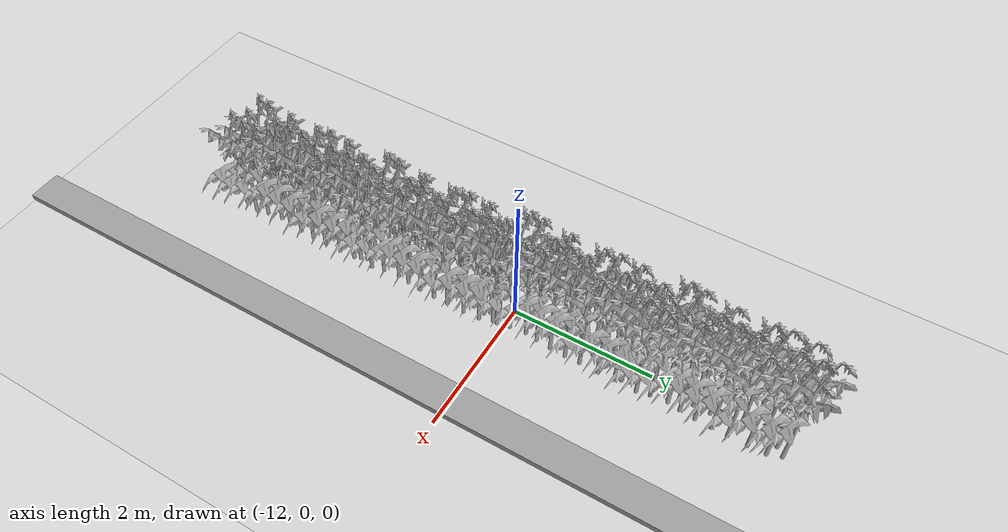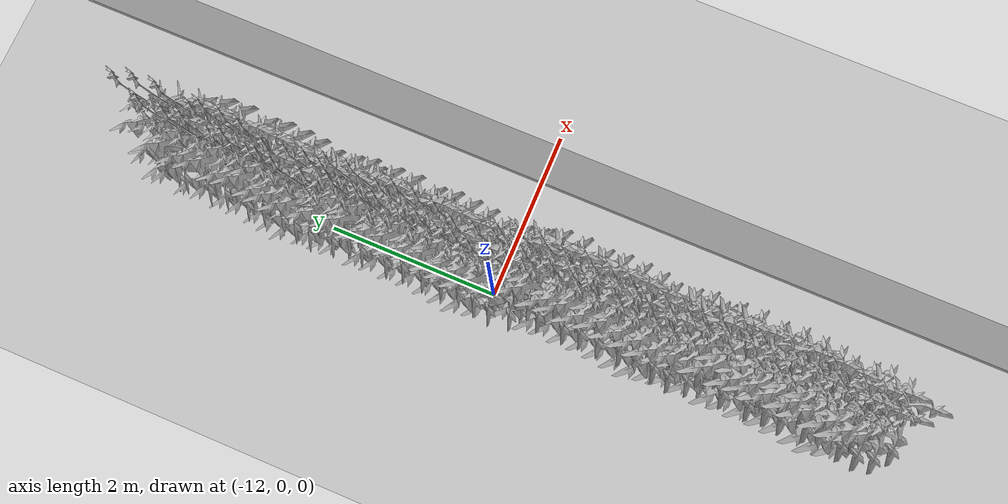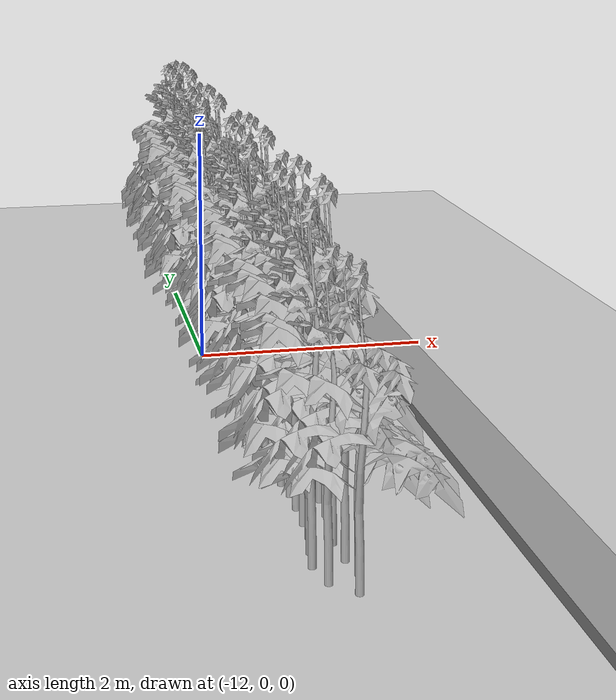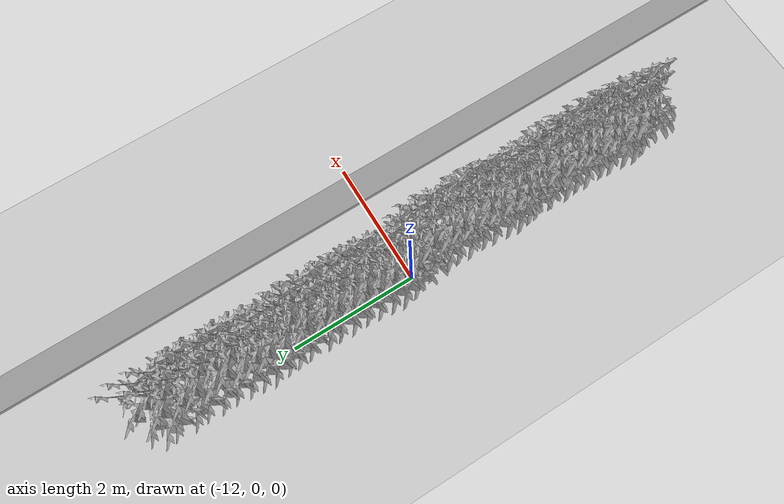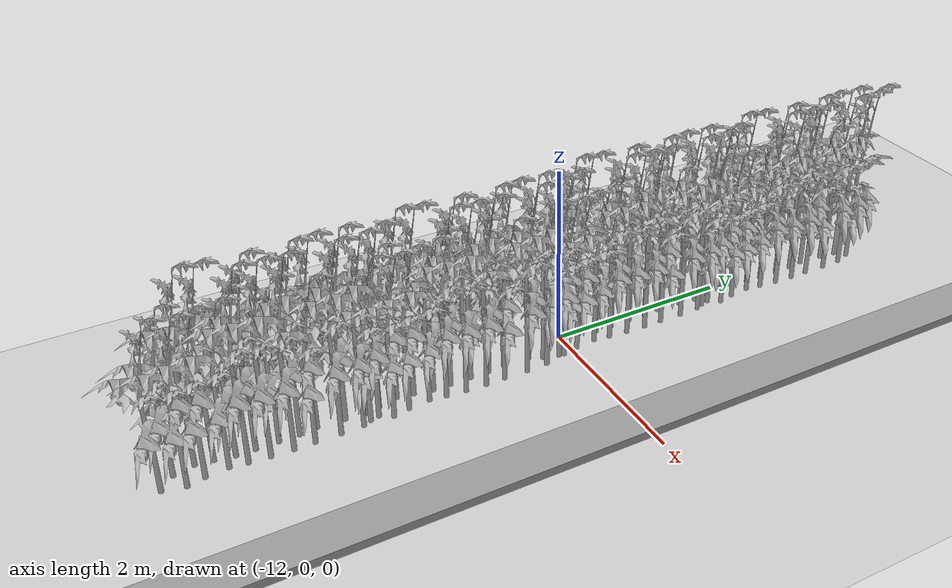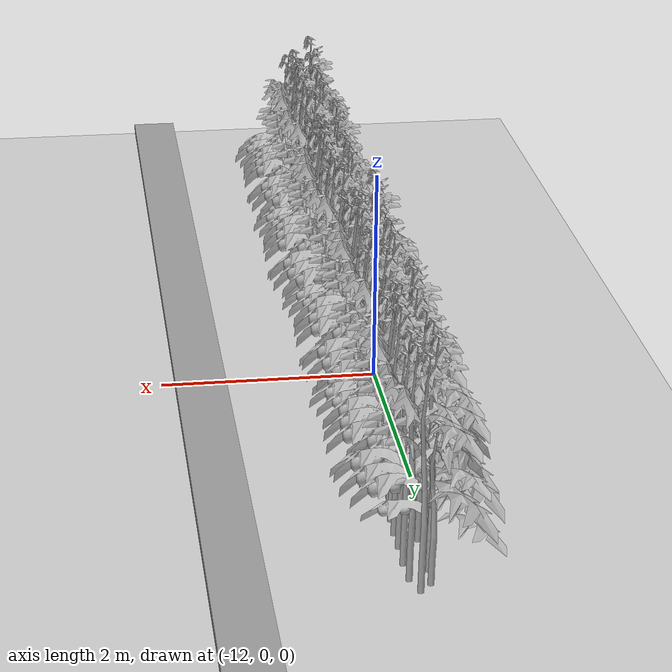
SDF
<sdf version="1.6">
 <world name="default">
  <model name="ground_plane">
   <static>1</static>
   <link name="link">
    <collision name="collision">
     <geometry><plane><normal>0 0 1</normal><size>100 100</size></plane></geometry>
     <surface>
      <contact><collide_bitmask>65535</collide_bitmask></contact>
      <friction><ode><mu>100</mu><mu2>50</mu2></ode></friction>
     </surface>
    </collision>
    <visual name="visual">
     <cast_shadows>0</cast_shadows>
     <geometry><plane><normal>0 0 1</normal><size>100 100</size></plane></geometry>
     <material>
      <script><uri>file://media/materials/scripts/gazebo.material</uri><name>Gazebo/Grey</name></script>
     </material>
    </visual>
   </link>
  </model>
  <model name="Box_24x15W_clone_3">
   <link name="Wall">
    <pose>0 0 0.1985 0 -0 0</pose>
    <inertial>
     <mass>5</mass>
     <inertia><ixx>0.1022</ixx><iyy>0.2197</iyy><izz>0.1905</izz><ixy>0</ixy><ixz>0</ixz><iyz>0</iyz></inertia>
    </inertial>
    <collision name="Wall_Collision">
     <geometry><box><size>0.470639 27.6098 0.091294</size></box></geometry>
    </collision>
    <visual name="Wall_Visual">
     <geometry><box><size>0.470639 27.6098 0.091294</size></box></geometry>
     <material>
      <script><uri>file://media/materials/scripts/gazebo.material</uri><name>Gazebo/Grey</name></script>
      <ambient>1 1 1 1</ambient>
     </material>
    </visual>
   </link>
   <static>1</static>
   <pose>-10.356 -0.233565 -0.139926 0 -0 0</pose>
  </model>
  <model name="MIddle_Plant_3_9">
   <model name="MIddle_Plant_1">
    <model name="tomato_plant_big">
     <static>1</static>
     <link name="link">
      <collision name="collision">
       <pose>0 0 0 1.5708 -0 0</pose>
       <geometry><mesh><scale>0.5 0.6 0.5</scale><uri>model://stick/meshes/stick.dae</uri></mesh></geometry>
      </collision>
      <visual name="visual">
       <geometry>
        <mesh><scale>5e-06 5e-06 7e-06</scale><uri>model://tomato_plant_big/meshes/tomato-plant.dae</uri></mesh>
       </geometry>
      </visual>
     </link>
     <pose>-0.144318 -0.693607 -0 0 -0 0</pose>
    </model>
    <model name="tomato_plant_big_0">
     <static>1</static>
     <link name="link">
      <collision name="collision">
       <pose>0 0 0 1.5708 -0 0</pose>
       <geometry><mesh><scale>0.5 0.6 0.5</scale><uri>model://stick/meshes/stick.dae</uri></mesh></geometry>
      </collision>
      <visual name="visual">
       <geometry>
        <mesh><scale>5e-06 5e-06 7e-06</scale><uri>model://tomato_plant_big/meshes/tomato-plant.dae</uri></mesh>
       </geometry>
      </visual>
     </link>
     <pose>-0.11784 -0.519827 0 0 -0 0</pose>
    </model>
    <model name="tomato_plant_big_1">
     <static>1</static>
     <link name="link">
      <collision name="collision">
       <pose>0 0 0 1.5708 -0 0</pose>
       <geometry><mesh><scale>0.5 0.6 0.5</scale><uri>model://stick/meshes/stick.dae</uri></mesh></geometry>
      </collision>
      <visual name="visual">
       <geometry>
        <mesh><scale>5e-06 5e-06 7e-06</scale><uri>model://tomato_plant_big/meshes/tomato-plant.dae</uri></mesh>
       </geometry>
      </visual>
     </link>
     <pose>0.073755 -0.247584 0 0 -0 0</pose>
    </model>
    <model name="tomato_plant_big_10">
     <static>1</static>
     <link name="link">
      <collision name="collision">
       <pose>0 0 0 1.5708 -0 0</pose>
       <geometry><mesh><scale>0.5 0.6 0.5</scale><uri>model://stick/meshes/stick.dae</uri></mesh></geometry>
      </collision>
      <visual name="visual">
       <geometry>
        <mesh><scale>5e-06 5e-06 7e-06</scale><uri>model://tomato_plant_big/meshes/tomato-plant.dae</uri></mesh>
       </geometry>
      </visual>
     </link>
     <pose>0.037052 1.07094 0 0 -0 0</pose>
    </model>
    <model name="tomato_plant_big_2">
     <static>1</static>
     <link name="link">
      <collision name="collision">
       <pose>0 0 0 1.5708 -0 0</pose>
       <geometry><mesh><scale>0.5 0.6 0.5</scale><uri>model://stick/meshes/stick.dae</uri></mesh></geometry>
      </collision>
      <visual name="visual">
       <geometry>
        <mesh><scale>5e-06 5e-06 7e-06</scale><uri>model://tomato_plant_big/meshes/tomato-plant.dae</uri></mesh>
       </geometry>
      </visual>
     </link>
     <pose>-0.076926 -0.131165 0 0 -0 0</pose>
    </model>
    <model name="tomato_plant_big_3">
     <static>1</static>
     <link name="link">
      <collision name="collision">
       <pose>0 0 0 1.5708 -0 0</pose>
       <geometry><mesh><scale>0.5 0.6 0.5</scale><uri>model://stick/meshes/stick.dae</uri></mesh></geometry>
      </collision>
      <visual name="visual">
       <geometry>
        <mesh><scale>5e-06 5e-06 7e-06</scale><uri>model://tomato_plant_big/meshes/tomato-plant.dae</uri></mesh>
       </geometry>
      </visual>
     </link>
     <pose>0.093714 -0.038386 0 0 -0 0</pose>
    </model>
    <model name="tomato_plant_big_4">
     <static>1</static>
     <link name="link">
      <collision name="collision">
       <pose>0 0 0 1.5708 -0 0</pose>
       <geometry><mesh><scale>0.5 0.6 0.5</scale><uri>model://stick/meshes/stick.dae</uri></mesh></geometry>
      </collision>
      <visual name="visual">
       <geometry>
        <mesh><scale>5e-06 5e-06 7e-06</scale><uri>model://tomato_plant_big/meshes/tomato-plant.dae</uri></mesh>
       </geometry>
      </visual>
     </link>
     <pose>0.103117 0.184356 0 0 -0 0</pose>
    </model>
    <model name="tomato_plant_big_5">
     <static>1</static>
     <link name="link">
      <collision name="collision">
       <pose>0 0 0 1.5708 -0 0</pose>
       <geometry><mesh><scale>0.5 0.6 0.5</scale><uri>model://stick/meshes/stick.dae</uri></mesh></geometry>
      </collision>
      <visual name="visual">
       <geometry>
        <mesh><scale>5e-06 5e-06 7e-06</scale><uri>model://tomato_plant_big/meshes/tomato-plant.dae</uri></mesh>
       </geometry>
      </visual>
     </link>
     <pose>-0.074883 0.301479 0 0 -0 0</pose>
    </model>
    <model name="tomato_plant_big_6">
     <static>1</static>
     <link name="link">
      <collision name="collision">
       <pose>0 0 0 1.5708 -0 0</pose>
       <geometry><mesh><scale>0.5 0.6 0.5</scale><uri>model://stick/meshes/stick.dae</uri></mesh></geometry>
      </collision>
      <visual name="visual">
       <geometry>
        <mesh><scale>5e-06 5e-06 7e-06</scale><uri>model://tomato_plant_big/meshes/tomato-plant.dae</uri></mesh>
       </geometry>
      </visual>
     </link>
     <pose>-0.096921 0.484007 0 0 -0 0</pose>
    </model>
    <model name="tomato_plant_big_7">
     <static>1</static>
     <link name="link">
      <collision name="collision">
       <pose>0 0 0 1.5708 -0 0</pose>
       <geometry><mesh><scale>0.5 0.6 0.5</scale><uri>model://stick/meshes/stick.dae</uri></mesh></geometry>
      </collision>
      <visual name="visual">
       <geometry>
        <mesh><scale>5e-06 5e-06 7e-06</scale><uri>model://tomato_plant_big/meshes/tomato-plant.dae</uri></mesh>
       </geometry>
      </visual>
     </link>
     <pose>0.107491 0.653976 0 0 -0 0</pose>
    </model>
    <model name="tomato_plant_big_8">
     <static>1</static>
     <link name="link">
      <collision name="collision">
       <pose>0 0 0 1.5708 -0 0</pose>
       <geometry><mesh><scale>0.5 0.6 0.5</scale><uri>model://stick/meshes/stick.dae</uri></mesh></geometry>
      </collision>
      <visual name="visual">
       <geometry>
        <mesh><scale>5e-06 5e-06 7e-06</scale><uri>model://tomato_plant_big/meshes/tomato-plant.dae</uri></mesh>
       </geometry>
      </visual>
     </link>
     <pose>-0.07985 0.768549 0 0 -0 0</pose>
    </model>
    <model name="tomato_plant_big_9">
     <static>1</static>
     <link name="link">
      <collision name="collision">
       <pose>0 0 0 1.5708 -0 0</pose>
       <geometry><mesh><scale>0.5 0.6 0.5</scale><uri>model://stick/meshes/stick.dae</uri></mesh></geometry>
      </collision>
      <visual name="visual">
       <geometry>
        <mesh><scale>5e-06 5e-06 7e-06</scale><uri>model://tomato_plant_big/meshes/tomato-plant.dae</uri></mesh>
       </geometry>
      </visual>
     </link>
     <pose>0.098361 0.890852 0 0 -0 0</pose>
    </model>
    <model name="tomato_plant_medium">
     <static>1</static>
     <link name="link">
      <collision name="collision">
       <pose>0 0 0 1.5708 -0 0</pose>
       <geometry><mesh><scale>0.5 0.5 0.5</scale><uri>model://stick/meshes/stick.dae</uri></mesh></geometry>
      </collision>
      <visual name="visual">
       <geometry>
        <mesh><scale>5e-06 5e-06 6e-06</scale><uri>model://tomato_plant_medium/meshes/tomato-plant.dae</uri></mesh>
       </geometry>
      </visual>
     </link>
     <pose>0.056913 -1.05328 0 0 -0 0</pose>
    </model>
    <model name="tomato_plant_medium_0">
     <static>1</static>
     <link name="link">
      <collision name="collision">
       <pose>0 0 0 1.5708 -0 0</pose>
       <geometry><mesh><scale>0.5 0.5 0.5</scale><uri>model://stick/meshes/stick.dae</uri></mesh></geometry>
      </collision>
      <visual name="visual">
       <geometry>
        <mesh><scale>5e-06 5e-06 6e-06</scale><uri>model://tomato_plant_medium/meshes/tomato-plant.dae</uri></mesh>
       </geometry>
      </visual>
     </link>
     <pose>-0.092719 -0.905729 0 0 -0 0</pose>
    </model>
    <model name="tomato_plant_medium_1">
     <static>1</static>
     <link name="link">
      <collision name="collision">
       <pose>0 0 0 1.5708 -0 0</pose>
       <geometry><mesh><scale>0.5 0.5 0.5</scale><uri>model://stick/meshes/stick.dae</uri></mesh></geometry>
      </collision>
      <visual name="visual">
       <geometry>
        <mesh><scale>5e-06 5e-06 6e-06</scale><uri>model://tomato_plant_medium/meshes/tomato-plant.dae</uri></mesh>
       </geometry>
      </visual>
     </link>
     <pose>0.108962 -0.829637 0 0 -0 0</pose>
    </model>
    <model name="tomato_plant_medium_2">
     <static>1</static>
     <link name="link">
      <collision name="collision">
       <pose>0 0 0 1.5708 -0 0</pose>
       <geometry><mesh><scale>0.5 0.5 0.5</scale><uri>model://stick/meshes/stick.dae</uri></mesh></geometry>
      </collision>
      <visual name="visual">
       <geometry>
        <mesh><scale>5e-06 5e-06 6e-06</scale><uri>model://tomato_plant_medium/meshes/tomato-plant.dae</uri></mesh>
       </geometry>
      </visual>
     </link>
     <pose>0.071216 -0.652507 0 0 -0 0</pose>
    </model>
    <model name="tomato_plant_medium_3">
     <static>1</static>
     <link name="link">
      <collision name="collision">
       <pose>0 0 0 1.5708 -0 0</pose>
       <geometry><mesh><scale>0.5 0.5 0.5</scale><uri>model://stick/meshes/stick.dae</uri></mesh></geometry>
      </collision>
      <visual name="visual">
       <geometry>
        <mesh><scale>5e-06 5e-06 6e-06</scale><uri>model://tomato_plant_medium/meshes/tomato-plant.dae</uri></mesh>
       </geometry>
      </visual>
     </link>
     <pose>0.047335 -0.423046 0 0 -0 0</pose>
    </model>
    <model name="tomato_plant_medium_4">
     <static>1</static>
     <link name="link">
      <collision name="collision">
       <pose>0 0 0 1.5708 -0 0</pose>
       <geometry><mesh><scale>0.5 0.5 0.5</scale><uri>model://stick/meshes/stick.dae</uri></mesh></geometry>
      </collision>
      <visual name="visual">
       <geometry>
        <mesh><scale>5e-06 5e-06 6e-06</scale><uri>model://tomato_plant_medium/meshes/tomato-plant.dae</uri></mesh>
       </geometry>
      </visual>
     </link>
     <pose>-0.081012 -0.320324 0 0 -0 0</pose>
    </model>
    <model name="tomato_plant_medium_5">
     <static>1</static>
     <link name="link">
      <collision name="collision">
       <pose>0 0 0 1.5708 -0 0</pose>
       <geometry><mesh><scale>0.5 0.5 0.5</scale><uri>model://stick/meshes/stick.dae</uri></mesh></geometry>
      </collision>
      <visual name="visual">
       <geometry>
        <mesh><scale>5e-06 5e-06 6e-06</scale><uri>model://tomato_plant_medium/meshes/tomato-plant.dae</uri></mesh>
       </geometry>
      </visual>
     </link>
     <pose>-0.07452 0.095988 0 0 -0 0</pose>
    </model>
    <model name="tomato_plant_medium_6">
     <static>1</static>
     <link name="link">
      <collision name="collision">
       <pose>0 0 0 1.5708 -0 0</pose>
       <geometry><mesh><scale>0.5 0.5 0.5</scale><uri>model://stick/meshes/stick.dae</uri></mesh></geometry>
      </collision>
      <visual name="visual">
       <geometry>
        <mesh><scale>5e-06 5e-06 6e-06</scale><uri>model://tomato_plant_medium/meshes/tomato-plant.dae</uri></mesh>
       </geometry>
      </visual>
     </link>
     <pose>0.101424 0.395443 0 0 -0 0</pose>
    </model>
    <model name="tomato_plant_small">
     <static>1</static>
     <link name="link">
      <collision name="collision">
       <pose>0 0 0 1.5708 -0 0</pose>
       <geometry><mesh><scale>0.5 0.45 0.5</scale><uri>model://stick/meshes/stick.dae</uri></mesh></geometry>
      </collision>
      <visual name="visual">
       <geometry>
        <mesh><scale>5e-06 5e-06 5e-06</scale><uri>model://tomato_plant_small/meshes/tomato-plant.dae</uri></mesh>
       </geometry>
      </visual>
     </link>
     <pose>-0.060351 0.969512 0 0 -0 0</pose>
    </model>
    <static>0</static>
    <pose>0.040757 1.77284 0 0 -0 0</pose>
   </model>
   <model name="MIddle_Plant_2">
    <model name="MIddle_Plant_1">
     <model name="tomato_plant_big">
      <static>1</static>
      <link name="link">
       <collision name="collision">
        <pose>0 0 0 1.5708 -0 0</pose>
        <geometry><mesh><scale>0.5 0.6 0.5</scale><uri>model://stick/meshes/stick.dae</uri></mesh></geometry>
       </collision>
       <visual name="visual">
        <geometry>
         <mesh><scale>5e-06 5e-06 7e-06</scale><uri>model://tomato_plant_big/meshes/tomato-plant.dae</uri></mesh>
        </geometry>
       </visual>
      </link>
      <pose>-0.144318 -0.693607 -0 0 -0 0</pose>
     </model>
     <model name="tomato_plant_big_0">
      <static>1</static>
      <link name="link">
       <collision name="collision">
        <pose>0 0 0 1.5708 -0 0</pose>
        <geometry><mesh><scale>0.5 0.6 0.5</scale><uri>model://stick/meshes/stick.dae</uri></mesh></geometry>
       </collision>
       <visual name="visual">
        <geometry>
         <mesh><scale>5e-06 5e-06 7e-06</scale><uri>model://tomato_plant_big/meshes/tomato-plant.dae</uri></mesh>
        </geometry>
       </visual>
      </link>
      <pose>-0.11784 -0.519827 0 0 -0 0</pose>
     </model>
     <model name="tomato_plant_big_1">
      <static>1</static>
      <link name="link">
       <collision name="collision">
        <pose>0 0 0 1.5708 -0 0</pose>
        <geometry><mesh><scale>0.5 0.6 0.5</scale><uri>model://stick/meshes/stick.dae</uri></mesh></geometry>
       </collision>
       <visual name="visual">
        <geometry>
         <mesh><scale>5e-06 5e-06 7e-06</scale><uri>model://tomato_plant_big/meshes/tomato-plant.dae</uri></mesh>
        </geometry>
       </visual>
      </link>
      <pose>0.073755 -0.247584 0 0 -0 0</pose>
     </model>
     <model name="tomato_plant_big_10">
      <static>1</static>
      <link name="link">
       <collision name="collision">
        <pose>0 0 0 1.5708 -0 0</pose>
        <geometry><mesh><scale>0.5 0.6 0.5</scale><uri>model://stick/meshes/stick.dae</uri></mesh></geometry>
       </collision>
       <visual name="visual">
        <geometry>
         <mesh><scale>5e-06 5e-06 7e-06</scale><uri>model://tomato_plant_big/meshes/tomato-plant.dae</uri></mesh>
        </geometry>
       </visual>
      </link>
      <pose>0.037052 1.07094 0 0 -0 0</pose>
     </model>
     <model name="tomato_plant_big_2">
      <static>1</static>
      <link name="link">
       <collision name="collision">
        <pose>0 0 0 1.5708 -0 0</pose>
        <geometry><mesh><scale>0.5 0.6 0.5</scale><uri>model://stick/meshes/stick.dae</uri></mesh></geometry>
       </collision>
       <visual name="visual">
        <geometry>
         <mesh><scale>5e-06 5e-06 7e-06</scale><uri>model://tomato_plant_big/meshes/tomato-plant.dae</uri></mesh>
        </geometry>
       </visual>
      </link>
      <pose>-0.076926 -0.131165 0 0 -0 0</pose>
     </model>
     <model name="tomato_plant_big_3">
      <static>1</static>
      <link name="link">
       <collision name="collision">
        <pose>0 0 0 1.5708 -0 0</pose>
        <geometry><mesh><scale>0.5 0.6 0.5</scale><uri>model://stick/meshes/stick.dae</uri></mesh></geometry>
       </collision>
       <visual name="visual">
        <geometry>
         <mesh><scale>5e-06 5e-06 7e-06</scale><uri>model://tomato_plant_big/meshes/tomato-plant.dae</uri></mesh>
        </geometry>
       </visual>
      </link>
      <pose>0.093714 -0.038386 0 0 -0 0</pose>
     </model>
     <model name="tomato_plant_big_4">
      <static>1</static>
      <link name="link">
       <collision name="collision">
        <pose>0 0 0 1.5708 -0 0</pose>
        <geometry><mesh><scale>0.5 0.6 0.5</scale><uri>model://stick/meshes/stick.dae</uri></mesh></geometry>
       </collision>
       <visual name="visual">
        <geometry>
         <mesh><scale>5e-06 5e-06 7e-06</scale><uri>model://tomato_plant_big/meshes/tomato-plant.dae</uri></mesh>
        </geometry>
       </visual>
      </link>
      <pose>0.103117 0.184356 0 0 -0 0</pose>
     </model>
     <model name="tomato_plant_big_5">
      <static>1</static>
      <link name="link">
       <collision name="collision">
        <pose>0 0 0 1.5708 -0 0</pose>
        <geometry><mesh><scale>0.5 0.6 0.5</scale><uri>model://stick/meshes/stick.dae</uri></mesh></geometry>
       </collision>
       <visual name="visual">
        <geometry>
         <mesh><scale>5e-06 5e-06 7e-06</scale><uri>model://tomato_plant_big/meshes/tomato-plant.dae</uri></mesh>
        </geometry>
       </visual>
      </link>
      <pose>-0.074883 0.301479 0 0 -0 0</pose>
     </model>
     <model name="tomato_plant_big_6">
      <static>1</static>
      <link name="link">
       <collision name="collision">
        <pose>0 0 0 1.5708 -0 0</pose>
        <geometry><mesh><scale>0.5 0.6 0.5</scale><uri>model://stick/meshes/stick.dae</uri></mesh></geometry>
       </collision>
       <visual name="visual">
        <geometry>
         <mesh><scale>5e-06 5e-06 7e-06</scale><uri>model://tomato_plant_big/meshes/tomato-plant.dae</uri></mesh>
        </geometry>
       </visual>
      </link>
      <pose>-0.096921 0.484007 0 0 -0 0</pose>
     </model>
     <model name="tomato_plant_big_7">
      <static>1</static>
      <link name="link">
       <collision name="collision">
        <pose>0 0 0 1.5708 -0 0</pose>
        <geometry><mesh><scale>0.5 0.6 0.5</scale><uri>model://stick/meshes/stick.dae</uri></mesh></geometry>
       </collision>
       <visual name="visual">
        <geometry>
         <mesh><scale>5e-06 5e-06 7e-06</scale><uri>model://tomato_plant_big/meshes/tomato-plant.dae</uri></mesh>
        </geometry>
       </visual>
      </link>
      <pose>0.107491 0.653976 0 0 -0 0</pose>
     </model>
     <model name="tomato_plant_big_8">
      <static>1</static>
      <link name="link">
       <collision name="collision">
        <pose>0 0 0 1.5708 -0 0</pose>
        <geometry><mesh><scale>0.5 0.6 0.5</scale><uri>model://stick/meshes/stick.dae</uri></mesh></geometry>
       </collision>
       <visual name="visual">
        <geometry>
         <mesh><scale>5e-06 5e-06 7e-06</scale><uri>model://tomato_plant_big/meshes/tomato-plant.dae</uri></mesh>
        </geometry>
       </visual>
      </link>
      <pose>-0.07985 0.768549 0 0 -0 0</pose>
     </model>
     <model name="tomato_plant_big_9">
      <static>1</static>
      <link name="link">
       <collision name="collision">
        <pose>0 0 0 1.5708 -0 0</pose>
        <geometry><mesh><scale>0.5 0.6 0.5</scale><uri>model://stick/meshes/stick.dae</uri></mesh></geometry>
       </collision>
       <visual name="visual">
        <geometry>
         <mesh><scale>5e-06 5e-06 7e-06</scale><uri>model://tomato_plant_big/meshes/tomato-plant.dae</uri></mesh>
        </geometry>
       </visual>
      </link>
      <pose>0.098361 0.890852 0 0 -0 0</pose>
     </model>
     <model name="tomato_plant_medium">
      <static>1</static>
      <link name="link">
       <collision name="collision">
        <pose>0 0 0 1.5708 -0 0</pose>
        <geometry><mesh><scale>0.5 0.5 0.5</scale><uri>model://stick/meshes/stick.dae</uri></mesh></geometry>
       </collision>
       <visual name="visual">
        <geometry>
         <mesh><scale>5e-06 5e-06 6e-06</scale><uri>model://tomato_plant_medium/meshes/tomato-plant.dae</uri></mesh>
        </geometry>
       </visual>
      </link>
      <pose>0.056913 -1.05328 0 0 -0 0</pose>
     </model>
     <model name="tomato_plant_medium_0">
      <static>1</static>
      <link name="link">
       <collision name="collision">
        <pose>0 0 0 1.5708 -0 0</pose>
        <geometry><mesh><scale>0.5 0.5 0.5</scale><uri>model://stick/meshes/stick.dae</uri></mesh></geometry>
       </collision>
       <visual name="visual">
        <geometry>
         <mesh><scale>5e-06 5e-06 6e-06</scale><uri>model://tomato_plant_medium/meshes/tomato-plant.dae</uri></mesh>
        </geometry>
       </visual>
      </link>
      <pose>-0.092719 -0.905729 0 0 -0 0</pose>
     </model>
     <model name="tomato_plant_medium_1">
      <static>1</static>
      <link name="link">
       <collision name="collision">
        <pose>0 0 0 1.5708 -0 0</pose>
        <geometry><mesh><scale>0.5 0.5 0.5</scale><uri>model://stick/meshes/stick.dae</uri></mesh></geometry>
       </collision>
       <visual name="visual">
        <geometry>
         <mesh><scale>5e-06 5e-06 6e-06</scale><uri>model://tomato_plant_medium/meshes/tomato-plant.dae</uri></mesh>
        </geometry>
       </visual>
      </link>
      <pose>0.108962 -0.829637 0 0 -0 0</pose>
     </model>
     <model name="tomato_plant_medium_2">
      <static>1</static>
      <link name="link">
       <collision name="collision">
        <pose>0 0 0 1.5708 -0 0</pose>
        <geometry><mesh><scale>0.5 0.5 0.5</scale><uri>model://stick/meshes/stick.dae</uri></mesh></geometry>
       </collision>
       <visual name="visual">
        <geometry>
         <mesh><scale>5e-06 5e-06 6e-06</scale><uri>model://tomato_plant_medium/meshes/tomato-plant.dae</uri></mesh>
        </geometry>
       </visual>
      </link>
      <pose>0.071216 -0.652507 0 0 -0 0</pose>
     </model>
     <model name="tomato_plant_medium_3">
      <static>1</static>
      <link name="link">
       <collision name="collision">
        <pose>0 0 0 1.5708 -0 0</pose>
        <geometry><mesh><scale>0.5 0.5 0.5</scale><uri>model://stick/meshes/stick.dae</uri></mesh></geometry>
       </collision>
       <visual name="visual">
        <geometry>
         <mesh><scale>5e-06 5e-06 6e-06</scale><uri>model://tomato_plant_medium/meshes/tomato-plant.dae</uri></mesh>
        </geometry>
       </visual>
      </link>
      <pose>0.047335 -0.423046 0 0 -0 0</pose>
     </model>
     <model name="tomato_plant_medium_4">
      <static>1</static>
      <link name="link">
       <collision name="collision">
        <pose>0 0 0 1.5708 -0 0</pose>
        <geometry><mesh><scale>0.5 0.5 0.5</scale><uri>model://stick/meshes/stick.dae</uri></mesh></geometry>
       </collision>
       <visual name="visual">
        <geometry>
         <mesh><scale>5e-06 5e-06 6e-06</scale><uri>model://tomato_plant_medium/meshes/tomato-plant.dae</uri></mesh>
        </geometry>
       </visual>
      </link>
      <pose>-0.081012 -0.320324 0 0 -0 0</pose>
     </model>
     <model name="tomato_plant_medium_5">
      <static>1</static>
      <link name="link">
       <collision name="collision">
        <pose>0 0 0 1.5708 -0 0</pose>
        <geometry><mesh><scale>0.5 0.5 0.5</scale><uri>model://stick/meshes/stick.dae</uri></mesh></geometry>
       </collision>
       <visual name="visual">
        <geometry>
         <mesh><scale>5e-06 5e-06 6e-06</scale><uri>model://tomato_plant_medium/meshes/tomato-plant.dae</uri></mesh>
        </geometry>
       </visual>
      </link>
      <pose>-0.07452 0.095988 0 0 -0 0</pose>
     </model>
     <model name="tomato_plant_medium_6">
      <static>1</static>
      <link name="link">
       <collision name="collision">
        <pose>0 0 0 1.5708 -0 0</pose>
        <geometry><mesh><scale>0.5 0.5 0.5</scale><uri>model://stick/meshes/stick.dae</uri></mesh></geometry>
       </collision>
       <visual name="visual">
        <geometry>
         <mesh><scale>5e-06 5e-06 6e-06</scale><uri>model://tomato_plant_medium/meshes/tomato-plant.dae</uri></mesh>
        </geometry>
       </visual>
      </link>
      <pose>0.101424 0.395443 0 0 -0 0</pose>
     </model>
     <model name="tomato_plant_small">
      <static>1</static>
      <link name="link">
       <collision name="collision">
        <pose>0 0 0 1.5708 -0 0</pose>
        <geometry><mesh><scale>0.5 0.45 0.5</scale><uri>model://stick/meshes/stick.dae</uri></mesh></geometry>
       </collision>
       <visual name="visual">
        <geometry>
         <mesh><scale>5e-06 5e-06 5e-06</scale><uri>model://tomato_plant_small/meshes/tomato-plant.dae</uri></mesh>
        </geometry>
       </visual>
      </link>
      <pose>-0.060351 0.969512 0 0 -0 0</pose>
     </model>
     <static>0</static>
     <pose>0.763113 0.028917 0 0 -0 0</pose>
    </model>
    <model name="tomato_plant_big">
     <static>1</static>
     <link name="link">
      <collision name="collision">
       <pose>0 0 0 1.5708 -0 0</pose>
       <geometry><mesh><scale>0.5 0.6 0.5</scale><uri>model://stick/meshes/stick.dae</uri></mesh></geometry>
      </collision>
      <visual name="visual">
       <geometry>
        <mesh><scale>5e-06 5e-06 7e-06</scale><uri>model://tomato_plant_big/meshes/tomato-plant.dae</uri></mesh>
       </geometry>
      </visual>
     </link>
     <pose>0.613724 -2.69399 -0 0 -0 0</pose>
    </model>
    <model name="tomato_plant_big_0">
     <static>1</static>
     <link name="link">
      <collision name="collision">
       <pose>0 0 0 1.5708 -0 0</pose>
       <geometry><mesh><scale>0.5 0.6 0.5</scale><uri>model://stick/meshes/stick.dae</uri></mesh></geometry>
      </collision>
      <visual name="visual">
       <geometry>
        <mesh><scale>5e-06 5e-06 7e-06</scale><uri>model://tomato_plant_big/meshes/tomato-plant.dae</uri></mesh>
       </geometry>
      </visual>
     </link>
     <pose>0.640202 -2.52021 0 0 -0 0</pose>
    </model>
    <model name="tomato_plant_big_1">
     <static>1</static>
     <link name="link">
      <collision name="collision">
       <pose>0 0 0 1.5708 -0 0</pose>
       <geometry><mesh><scale>0.5 0.6 0.5</scale><uri>model://stick/meshes/stick.dae</uri></mesh></geometry>
      </collision>
      <visual name="visual">
       <geometry>
        <mesh><scale>5e-06 5e-06 7e-06</scale><uri>model://tomato_plant_big/meshes/tomato-plant.dae</uri></mesh>
       </geometry>
      </visual>
     </link>
     <pose>0.831797 -2.24797 0 0 -0 0</pose>
    </model>
    <model name="tomato_plant_big_10">
     <static>1</static>
     <link name="link">
      <collision name="collision">
       <pose>0 0 0 1.5708 -0 0</pose>
       <geometry><mesh><scale>0.5 0.6 0.5</scale><uri>model://stick/meshes/stick.dae</uri></mesh></geometry>
      </collision>
      <visual name="visual">
       <geometry>
        <mesh><scale>5e-06 5e-06 7e-06</scale><uri>model://tomato_plant_big/meshes/tomato-plant.dae</uri></mesh>
       </geometry>
      </visual>
     </link>
     <pose>0.795094 -0.929446 0 0 -0 0</pose>
    </model>
    <model name="tomato_plant_big_2">
     <static>1</static>
     <link name="link">
      <collision name="collision">
       <pose>0 0 0 1.5708 -0 0</pose>
       <geometry><mesh><scale>0.5 0.6 0.5</scale><uri>model://stick/meshes/stick.dae</uri></mesh></geometry>
      </collision>
      <visual name="visual">
       <geometry>
        <mesh><scale>5e-06 5e-06 7e-06</scale><uri>model://tomato_plant_big/meshes/tomato-plant.dae</uri></mesh>
       </geometry>
      </visual>
     </link>
     <pose>0.681116 -2.13155 0 0 -0 0</pose>
    </model>
    <model name="tomato_plant_big_3">
     <static>1</static>
     <link name="link">
      <collision name="collision">
       <pose>0 0 0 1.5708 -0 0</pose>
       <geometry><mesh><scale>0.5 0.6 0.5</scale><uri>model://stick/meshes/stick.dae</uri></mesh></geometry>
      </collision>
      <visual name="visual">
       <geometry>
        <mesh><scale>5e-06 5e-06 7e-06</scale><uri>model://tomato_plant_big/meshes/tomato-plant.dae</uri></mesh>
       </geometry>
      </visual>
     </link>
     <pose>0.851755 -2.03877 0 0 -0 0</pose>
    </model>
    <model name="tomato_plant_big_4">
     <static>1</static>
     <link name="link">
      <collision name="collision">
       <pose>0 0 0 1.5708 -0 0</pose>
       <geometry><mesh><scale>0.5 0.6 0.5</scale><uri>model://stick/meshes/stick.dae</uri></mesh></geometry>
      </collision>
      <visual name="visual">
       <geometry>
        <mesh><scale>5e-06 5e-06 7e-06</scale><uri>model://tomato_plant_big/meshes/tomato-plant.dae</uri></mesh>
       </geometry>
      </visual>
     </link>
     <pose>0.861158 -1.81603 0 0 -0 0</pose>
    </model>
    <model name="tomato_plant_big_5">
     <static>1</static>
     <link name="link">
      <collision name="collision">
       <pose>0 0 0 1.5708 -0 0</pose>
       <geometry><mesh><scale>0.5 0.6 0.5</scale><uri>model://stick/meshes/stick.dae</uri></mesh></geometry>
      </collision>
      <visual name="visual">
       <geometry>
        <mesh><scale>5e-06 5e-06 7e-06</scale><uri>model://tomato_plant_big/meshes/tomato-plant.dae</uri></mesh>
       </geometry>
      </visual>
     </link>
     <pose>0.683158 -1.69891 0 0 -0 0</pose>
    </model>
    <model name="tomato_plant_big_6">
     <static>1</static>
     <link name="link">
      <collision name="collision">
       <pose>0 0 0 1.5708 -0 0</pose>
       <geometry><mesh><scale>0.5 0.6 0.5</scale><uri>model://stick/meshes/stick.dae</uri></mesh></geometry>
      </collision>
      <visual name="visual">
       <geometry>
        <mesh><scale>5e-06 5e-06 7e-06</scale><uri>model://tomato_plant_big/meshes/tomato-plant.dae</uri></mesh>
       </geometry>
      </visual>
     </link>
     <pose>0.66112 -1.51638 0 0 -0 0</pose>
    </model>
    <model name="tomato_plant_big_7">
     <static>1</static>
     <link name="link">
      <collision name="collision">
       <pose>0 0 0 1.5708 -0 0</pose>
       <geometry><mesh><scale>0.5 0.6 0.5</scale><uri>model://stick/meshes/stick.dae</uri></mesh></geometry>
      </collision>
      <visual name="visual">
       <geometry>
        <mesh><scale>5e-06 5e-06 7e-06</scale><uri>model://tomato_plant_big/meshes/tomato-plant.dae</uri></mesh>
       </geometry>
      </visual>
     </link>
     <pose>0.865532 -1.34641 0 0 -0 0</pose>
    </model>
    <model name="tomato_plant_big_8">
     <static>1</static>
     <link name="link">
      <collision name="collision">
       <pose>0 0 0 1.5708 -0 0</pose>
       <geometry><mesh><scale>0.5 0.6 0.5</scale><uri>model://stick/meshes/stick.dae</uri></mesh></geometry>
      </collision>
      <visual name="visual">
       <geometry>
        <mesh><scale>5e-06 5e-06 7e-06</scale><uri>model://tomato_plant_big/meshes/tomato-plant.dae</uri></mesh>
       </geometry>
      </visual>
     </link>
     <pose>0.678192 -1.23184 0 0 -0 0</pose>
    </model>
    <model name="tomato_plant_big_9">
     <static>1</static>
     <link name="link">
      <collision name="collision">
       <pose>0 0 0 1.5708 -0 0</pose>
       <geometry><mesh><scale>0.5 0.6 0.5</scale><uri>model://stick/meshes/stick.dae</uri></mesh></geometry>
      </collision>
      <visual name="visual">
       <geometry>
        <mesh><scale>5e-06 5e-06 7e-06</scale><uri>model://tomato_plant_big/meshes/tomato-plant.dae</uri></mesh>
       </geometry>
      </visual>
     </link>
     <pose>0.856402 -1.10953 0 0 -0 0</pose>
    </model>
    <model name="tomato_plant_medium">
     <static>1</static>
     <link name="link">
      <collision name="collision">
       <pose>0 0 0 1.5708 -0 0</pose>
       <geometry><mesh><scale>0.5 0.5 0.5</scale><uri>model://stick/meshes/stick.dae</uri></mesh></geometry>
      </collision>
      <visual name="visual">
       <geometry>
        <mesh><scale>5e-06 5e-06 6e-06</scale><uri>model://tomato_plant_medium/meshes/tomato-plant.dae</uri></mesh>
       </geometry>
      </visual>
     </link>
     <pose>0.814955 -3.05367 0 0 -0 0</pose>
    </model>
    <model name="tomato_plant_medium_0">
     <static>1</static>
     <link name="link">
      <collision name="collision">
       <pose>0 0 0 1.5708 -0 0</pose>
       <geometry><mesh><scale>0.5 0.5 0.5</scale><uri>model://stick/meshes/stick.dae</uri></mesh></geometry>
      </collision>
      <visual name="visual">
       <geometry>
        <mesh><scale>5e-06 5e-06 6e-06</scale><uri>model://tomato_plant_medium/meshes/tomato-plant.dae</uri></mesh>
       </geometry>
      </visual>
     </link>
     <pose>0.665322 -2.90611 0 0 -0 0</pose>
    </model>
    <model name="tomato_plant_medium_1">
     <static>1</static>
     <link name="link">
      <collision name="collision">
       <pose>0 0 0 1.5708 -0 0</pose>
       <geometry><mesh><scale>0.5 0.5 0.5</scale><uri>model://stick/meshes/stick.dae</uri></mesh></geometry>
      </collision>
      <visual name="visual">
       <geometry>
        <mesh><scale>5e-06 5e-06 6e-06</scale><uri>model://tomato_plant_medium/meshes/tomato-plant.dae</uri></mesh>
       </geometry>
      </visual>
     </link>
     <pose>0.867004 -2.83002 0 0 -0 0</pose>
    </model>
    <model name="tomato_plant_medium_2">
     <static>1</static>
     <link name="link">
      <collision name="collision">
       <pose>0 0 0 1.5708 -0 0</pose>
       <geometry><mesh><scale>0.5 0.5 0.5</scale><uri>model://stick/meshes/stick.dae</uri></mesh></geometry>
      </collision>
      <visual name="visual">
       <geometry>
        <mesh><scale>5e-06 5e-06 6e-06</scale><uri>model://tomato_plant_medium/meshes/tomato-plant.dae</uri></mesh>
       </geometry>
      </visual>
     </link>
     <pose>0.829257 -2.65289 0 0 -0 0</pose>
    </model>
    <model name="tomato_plant_medium_3">
     <static>1</static>
     <link name="link">
      <collision name="collision">
       <pose>0 0 0 1.5708 -0 0</pose>
       <geometry><mesh><scale>0.5 0.5 0.5</scale><uri>model://stick/meshes/stick.dae</uri></mesh></geometry>
      </collision>
      <visual name="visual">
       <geometry>
        <mesh><scale>5e-06 5e-06 6e-06</scale><uri>model://tomato_plant_medium/meshes/tomato-plant.dae</uri></mesh>
       </geometry>
      </visual>
     </link>
     <pose>0.805376 -2.42343 0 0 -0 0</pose>
    </model>
    <model name="tomato_plant_medium_4">
     <static>1</static>
     <link name="link">
      <collision name="collision">
       <pose>0 0 0 1.5708 -0 0</pose>
       <geometry><mesh><scale>0.5 0.5 0.5</scale><uri>model://stick/meshes/stick.dae</uri></mesh></geometry>
      </collision>
      <visual name="visual">
       <geometry>
        <mesh><scale>5e-06 5e-06 6e-06</scale><uri>model://tomato_plant_medium/meshes/tomato-plant.dae</uri></mesh>
       </geometry>
      </visual>
     </link>
     <pose>0.67703 -2.32071 0 0 -0 0</pose>
    </model>
    <model name="tomato_plant_medium_5">
     <static>1</static>
     <link name="link">
      <collision name="collision">
       <pose>0 0 0 1.5708 -0 0</pose>
       <geometry><mesh><scale>0.5 0.5 0.5</scale><uri>model://stick/meshes/stick.dae</uri></mesh></geometry>
      </collision>
      <visual name="visual">
       <geometry>
        <mesh><scale>5e-06 5e-06 6e-06</scale><uri>model://tomato_plant_medium/meshes/tomato-plant.dae</uri></mesh>
       </geometry>
      </visual>
     </link>
     <pose>0.683522 -1.9044 0 0 -0 0</pose>
    </model>
    <model name="tomato_plant_medium_6">
     <static>1</static>
     <link name="link">
      <collision name="collision">
       <pose>0 0 0 1.5708 -0 0</pose>
       <geometry><mesh><scale>0.5 0.5 0.5</scale><uri>model://stick/meshes/stick.dae</uri></mesh></geometry>
      </collision>
      <visual name="visual">
       <geometry>
        <mesh><scale>5e-06 5e-06 6e-06</scale><uri>model://tomato_plant_medium/meshes/tomato-plant.dae</uri></mesh>
       </geometry>
      </visual>
     </link>
     <pose>0.859466 -1.60494 0 0 -0 0</pose>
    </model>
    <model name="tomato_plant_small">
     <static>1</static>
     <link name="link">
      <collision name="collision">
       <pose>0 0 0 1.5708 -0 0</pose>
       <geometry><mesh><scale>0.5 0.45 0.5</scale><uri>model://stick/meshes/stick.dae</uri></mesh></geometry>
      </collision>
      <visual name="visual">
       <geometry>
        <mesh><scale>5e-06 5e-06 5e-06</scale><uri>model://tomato_plant_small/meshes/tomato-plant.dae</uri></mesh>
       </geometry>
      </visual>
     </link>
     <pose>0.697691 -1.03087 0 0 -0 0</pose>
    </model>
    <static>0</static>
    <pose>-0.78485 5.73439 0 0 -0 0</pose>
   </model>
   <model name="tomato_plant_big">
    <static>1</static>
    <link name="link">
     <collision name="collision">
      <pose>0 0 0 1.5708 -0 0</pose>
      <geometry><mesh><scale>0.5 0.6 0.5</scale><uri>model://stick/meshes/stick.dae</uri></mesh></geometry>
     </collision>
     <visual name="visual">
      <geometry>
       <mesh><scale>5e-06 5e-06 7e-06</scale><uri>model://tomato_plant_big/meshes/tomato-plant.dae</uri></mesh>
      </geometry>
     </visual>
    </link>
    <pose>-0.108632 -0.950068 -0 0 -0 0</pose>
   </model>
   <model name="tomato_plant_big_0">
    <static>1</static>
    <link name="link">
     <collision name="collision">
      <pose>0 0 0 1.5708 -0 0</pose>
      <geometry><mesh><scale>0.5 0.6 0.5</scale><uri>model://stick/meshes/stick.dae</uri></mesh></geometry>
     </collision>
     <visual name="visual">
      <geometry>
       <mesh><scale>5e-06 5e-06 7e-06</scale><uri>model://tomato_plant_big/meshes/tomato-plant.dae</uri></mesh>
      </geometry>
     </visual>
    </link>
    <pose>-0.082154 -0.776288 0 0 -0 0</pose>
   </model>
   <model name="tomato_plant_big_1">
    <static>1</static>
    <link name="link">
     <collision name="collision">
      <pose>0 0 0 1.5708 -0 0</pose>
      <geometry><mesh><scale>0.5 0.6 0.5</scale><uri>model://stick/meshes/stick.dae</uri></mesh></geometry>
     </collision>
     <visual name="visual">
      <geometry>
       <mesh><scale>5e-06 5e-06 7e-06</scale><uri>model://tomato_plant_big/meshes/tomato-plant.dae</uri></mesh>
      </geometry>
     </visual>
    </link>
    <pose>0.109441 -0.504045 0 0 -0 0</pose>
   </model>
   <model name="tomato_plant_big_10">
    <static>1</static>
    <link name="link">
     <collision name="collision">
      <pose>0 0 0 1.5708 -0 0</pose>
      <geometry><mesh><scale>0.5 0.6 0.5</scale><uri>model://stick/meshes/stick.dae</uri></mesh></geometry>
     </collision>
     <visual name="visual">
      <geometry>
       <mesh><scale>5e-06 5e-06 7e-06</scale><uri>model://tomato_plant_big/meshes/tomato-plant.dae</uri></mesh>
      </geometry>
     </visual>
    </link>
    <pose>0.072738 0.814477 0 0 -0 0</pose>
   </model>
   <model name="tomato_plant_big_2">
    <static>1</static>
    <link name="link">
     <collision name="collision">
      <pose>0 0 0 1.5708 -0 0</pose>
      <geometry><mesh><scale>0.5 0.6 0.5</scale><uri>model://stick/meshes/stick.dae</uri></mesh></geometry>
     </collision>
     <visual name="visual">
      <geometry>
       <mesh><scale>5e-06 5e-06 7e-06</scale><uri>model://tomato_plant_big/meshes/tomato-plant.dae</uri></mesh>
      </geometry>
     </visual>
    </link>
    <pose>-0.04124 -0.387626 0 0 -0 0</pose>
   </model>
   <model name="tomato_plant_big_3">
    <static>1</static>
    <link name="link">
     <collision name="collision">
      <pose>0 0 0 1.5708 -0 0</pose>
      <geometry><mesh><scale>0.5 0.6 0.5</scale><uri>model://stick/meshes/stick.dae</uri></mesh></geometry>
     </collision>
     <visual name="visual">
      <geometry>
       <mesh><scale>5e-06 5e-06 7e-06</scale><uri>model://tomato_plant_big/meshes/tomato-plant.dae</uri></mesh>
      </geometry>
     </visual>
    </link>
    <pose>0.129399 -0.294847 0 0 -0 0</pose>
   </model>
   <model name="tomato_plant_big_4">
    <static>1</static>
    <link name="link">
     <collision name="collision">
      <pose>0 0 0 1.5708 -0 0</pose>
      <geometry><mesh><scale>0.5 0.6 0.5</scale><uri>model://stick/meshes/stick.dae</uri></mesh></geometry>
     </collision>
     <visual name="visual">
      <geometry>
       <mesh><scale>5e-06 5e-06 7e-06</scale><uri>model://tomato_plant_big/meshes/tomato-plant.dae</uri></mesh>
      </geometry>
     </visual>
    </link>
    <pose>0.138802 -0.072105 0 0 -0 0</pose>
   </model>
   <model name="tomato_plant_big_5">
    <static>1</static>
    <link name="link">
     <collision name="collision">
      <pose>0 0 0 1.5708 -0 0</pose>
      <geometry><mesh><scale>0.5 0.6 0.5</scale><uri>model://stick/meshes/stick.dae</uri></mesh></geometry>
     </collision>
     <visual name="visual">
      <geometry>
       <mesh><scale>5e-06 5e-06 7e-06</scale><uri>model://tomato_plant_big/meshes/tomato-plant.dae</uri></mesh>
      </geometry>
     </visual>
    </link>
    <pose>-0.039198 0.045018 0 0 -0 0</pose>
   </model>
   <model name="tomato_plant_big_6">
    <static>1</static>
    <link name="link">
     <collision name="collision">
      <pose>0 0 0 1.5708 -0 0</pose>
      <geometry><mesh><scale>0.5 0.6 0.5</scale><uri>model://stick/meshes/stick.dae</uri></mesh></geometry>
     </collision>
     <visual name="visual">
      <geometry>
       <mesh><scale>5e-06 5e-06 7e-06</scale><uri>model://tomato_plant_big/meshes/tomato-plant.dae</uri></mesh>
      </geometry>
     </visual>
    </link>
    <pose>-0.061236 0.227546 0 0 -0 0</pose>
   </model>
   <model name="tomato_plant_big_7">
    <static>1</static>
    <link name="link">
     <collision name="collision">
      <pose>0 0 0 1.5708 -0 0</pose>
      <geometry><mesh><scale>0.5 0.6 0.5</scale><uri>model://stick/meshes/stick.dae</uri></mesh></geometry>
     </collision>
     <visual name="visual">
      <geometry>
       <mesh><scale>5e-06 5e-06 7e-06</scale><uri>model://tomato_plant_big/meshes/tomato-plant.dae</uri></mesh>
      </geometry>
     </visual>
    </link>
    <pose>0.143176 0.397515 0 0 -0 0</pose>
   </model>
   <model name="tomato_plant_big_8">
    <static>1</static>
    <link name="link">
     <collision name="collision">
      <pose>0 0 0 1.5708 -0 0</pose>
      <geometry><mesh><scale>0.5 0.6 0.5</scale><uri>model://stick/meshes/stick.dae</uri></mesh></geometry>
     </collision>
     <visual name="visual">
      <geometry>
       <mesh><scale>5e-06 5e-06 7e-06</scale><uri>model://tomato_plant_big/meshes/tomato-plant.dae</uri></mesh>
      </geometry>
     </visual>
    </link>
    <pose>-0.044164 0.512088 0 0 -0 0</pose>
   </model>
   <model name="tomato_plant_big_9">
    <static>1</static>
    <link name="link">
     <collision name="collision">
      <pose>0 0 0 1.5708 -0 0</pose>
      <geometry><mesh><scale>0.5 0.6 0.5</scale><uri>model://stick/meshes/stick.dae</uri></mesh></geometry>
     </collision>
     <visual name="visual">
      <geometry>
       <mesh><scale>5e-06 5e-06 7e-06</scale><uri>model://tomato_plant_big/meshes/tomato-plant.dae</uri></mesh>
      </geometry>
     </visual>
    </link>
    <pose>0.134046 0.634391 0 0 -0 0</pose>
   </model>
   <model name="tomato_plant_medium">
    <static>1</static>
    <link name="link">
     <collision name="collision">
      <pose>0 0 0 1.5708 -0 0</pose>
      <geometry><mesh><scale>0.5 0.5 0.5</scale><uri>model://stick/meshes/stick.dae</uri></mesh></geometry>
     </collision>
     <visual name="visual">
      <geometry>
       <mesh><scale>5e-06 5e-06 6e-06</scale><uri>model://tomato_plant_medium/meshes/tomato-plant.dae</uri></mesh>
      </geometry>
     </visual>
    </link>
    <pose>0.092599 -1.30974 0 0 -0 0</pose>
   </model>
   <model name="tomato_plant_medium_0">
    <static>1</static>
    <link name="link">
     <collision name="collision">
      <pose>0 0 0 1.5708 -0 0</pose>
      <geometry><mesh><scale>0.5 0.5 0.5</scale><uri>model://stick/meshes/stick.dae</uri></mesh></geometry>
     </collision>
     <visual name="visual">
      <geometry>
       <mesh><scale>5e-06 5e-06 6e-06</scale><uri>model://tomato_plant_medium/meshes/tomato-plant.dae</uri></mesh>
      </geometry>
     </visual>
    </link>
    <pose>-0.057034 -1.16219 0 0 -0 0</pose>
   </model>
   <model name="tomato_plant_medium_1">
    <static>1</static>
    <link name="link">
     <collision name="collision">
      <pose>0 0 0 1.5708 -0 0</pose>
      <geometry><mesh><scale>0.5 0.5 0.5</scale><uri>model://stick/meshes/stick.dae</uri></mesh></geometry>
     </collision>
     <visual name="visual">
      <geometry>
       <mesh><scale>5e-06 5e-06 6e-06</scale><uri>model://tomato_plant_medium/meshes/tomato-plant.dae</uri></mesh>
      </geometry>
     </visual>
    </link>
    <pose>0.144648 -1.0861 0 0 -0 0</pose>
   </model>
   <model name="tomato_plant_medium_2">
    <static>1</static>
    <link name="link">
     <collision name="collision">
      <pose>0 0 0 1.5708 -0 0</pose>
      <geometry><mesh><scale>0.5 0.5 0.5</scale><uri>model://stick/meshes/stick.dae</uri></mesh></geometry>
     </collision>
     <visual name="visual">
      <geometry>
       <mesh><scale>5e-06 5e-06 6e-06</scale><uri>model://tomato_plant_medium/meshes/tomato-plant.dae</uri></mesh>
      </geometry>
     </visual>
    </link>
    <pose>0.106901 -0.908968 0 0 -0 0</pose>
   </model>
   <model name="tomato_plant_medium_3">
    <static>1</static>
    <link name="link">
     <collision name="collision">
      <pose>0 0 0 1.5708 -0 0</pose>
      <geometry><mesh><scale>0.5 0.5 0.5</scale><uri>model://stick/meshes/stick.dae</uri></mesh></geometry>
     </collision>
     <visual name="visual">
      <geometry>
       <mesh><scale>5e-06 5e-06 6e-06</scale><uri>model://tomato_plant_medium/meshes/tomato-plant.dae</uri></mesh>
      </geometry>
     </visual>
    </link>
    <pose>0.08302 -0.679508 0 0 -0 0</pose>
   </model>
   <model name="tomato_plant_medium_4">
    <static>1</static>
    <link name="link">
     <collision name="collision">
      <pose>0 0 0 1.5708 -0 0</pose>
      <geometry><mesh><scale>0.5 0.5 0.5</scale><uri>model://stick/meshes/stick.dae</uri></mesh></geometry>
     </collision>
     <visual name="visual">
      <geometry>
       <mesh><scale>5e-06 5e-06 6e-06</scale><uri>model://tomato_plant_medium/meshes/tomato-plant.dae</uri></mesh>
      </geometry>
     </visual>
    </link>
    <pose>-0.045326 -0.576785 0 0 -0 0</pose>
   </model>
   <model name="tomato_plant_medium_5">
    <static>1</static>
    <link name="link">
     <collision name="collision">
      <pose>0 0 0 1.5708 -0 0</pose>
      <geometry><mesh><scale>0.5 0.5 0.5</scale><uri>model://stick/meshes/stick.dae</uri></mesh></geometry>
     </collision>
     <visual name="visual">
      <geometry>
       <mesh><scale>5e-06 5e-06 6e-06</scale><uri>model://tomato_plant_medium/meshes/tomato-plant.dae</uri></mesh>
      </geometry>
     </visual>
    </link>
    <pose>-0.038834 -0.160473 0 0 -0 0</pose>
   </model>
   <model name="tomato_plant_medium_6">
    <static>1</static>
    <link name="link">
     <collision name="collision">
      <pose>0 0 0 1.5708 -0 0</pose>
      <geometry><mesh><scale>0.5 0.5 0.5</scale><uri>model://stick/meshes/stick.dae</uri></mesh></geometry>
     </collision>
     <visual name="visual">
      <geometry>
       <mesh><scale>5e-06 5e-06 6e-06</scale><uri>model://tomato_plant_medium/meshes/tomato-plant.dae</uri></mesh>
      </geometry>
     </visual>
    </link>
    <pose>0.13711 0.138982 0 0 -0 0</pose>
   </model>
   <model name="tomato_plant_small">
    <static>1</static>
    <link name="link">
     <collision name="collision">
      <pose>0 0 0 1.5708 -0 0</pose>
      <geometry><mesh><scale>0.5 0.45 0.5</scale><uri>model://stick/meshes/stick.dae</uri></mesh></geometry>
     </collision>
     <visual name="visual">
      <geometry>
       <mesh><scale>5e-06 5e-06 5e-06</scale><uri>model://tomato_plant_small/meshes/tomato-plant.dae</uri></mesh>
      </geometry>
     </visual>
    </link>
    <pose>-0.024665 0.713051 0 0 -0 0</pose>
   </model>
   <static>0</static>
   <pose>-11.7755 -3.02848 0 0 -0 0</pose>
  </model>
 </world>
</sdf>
